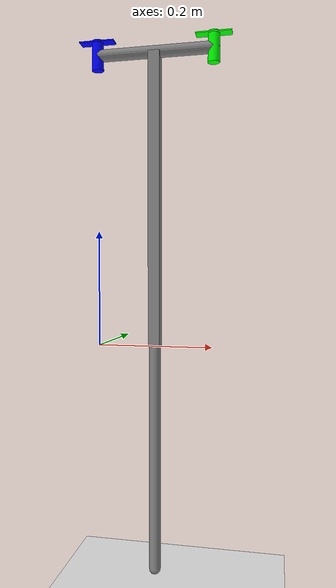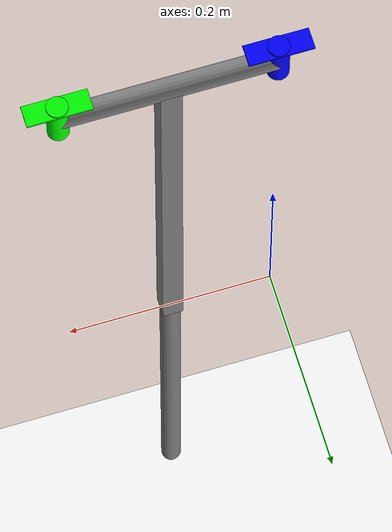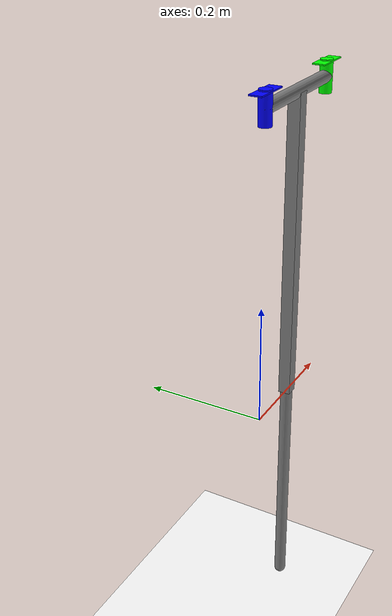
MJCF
<mujoco>
    <compiler angle = "degree"/>
    <option timestep = "0.002"/>
    <option>
        <flag gravity = "disable" contact = "disable"/>

    </option>
    <worldbody>
        <geom name="floor" type="plane" pos="0 0 -.5" size="2 2 .1" rgba = "1 1 1 1" mass = "0"/>
        <body name = "propeller_base" pos = "0.1 0 .5" >
            <joint type = "free" name = "free_joint"/>
            <geom type = "capsule" size = ".01 .1" axisangle = "0 1 0 90" mass = "1"/>
            <body name = "propeller_1" pos = ".1 0 0" >
                <geom name = "propeller_1_stick" type = "cylinder" size = ".01 .025" rgba = "0 1 0 1" mass = "0"/>
                <site name = "propeller_1_fan" type = "box" size = ".03 .01 .001" pos = "0 0 .022" rgba = "0 1 0 1" />
            </body>
            <body name = "propeller_2" pos = "-.1 0 0" >
                <geom name = "propeller_2_stick" type = "cylinder" size = ".01 .025" rgba = "0 0 1 1" mass = "0"/>
                <site name = "propeller_2_fan" type = "box" size = ".03 .01 .001" pos = "0 0 .022" rgba = "0 0 1 1" />
            </body>
            <body name = "leg_0">
                <joint type = "hinge" name = "prop_base_joint_1" axis = "1 0 0" pos = "0 0 0"/>
                <inertial pos = "0 0 0" mass = ".0001" diaginertia = ".5 .5 1" />

                <body name = "leg_1">

                    <joint type = "hinge" name = "prop_base_joint_2" axis = "0 1 0" pos = "0 0 0"/>

                    <geom type = "box" fromto = "0 0 0 0 0 -.5" name = "leg_1_stick" size = ".01 .01" mass = "1"/>
                    <body name = "leg_2" pos = "0 0 -.5">
                        <joint type = "hinge" name = "knee" axis = "0 1 0"/>
                        <geom name = "leg_2_stick" type = "capsule" fromto = "0 0 0 0 0 -.4" size = ".01" mass = "1"/>
                        <site name = "foot" pos = "0 0 -.4"/>

                    </body>
                </body>

            </body>
        </body>

    </worldbody>
</mujoco>
